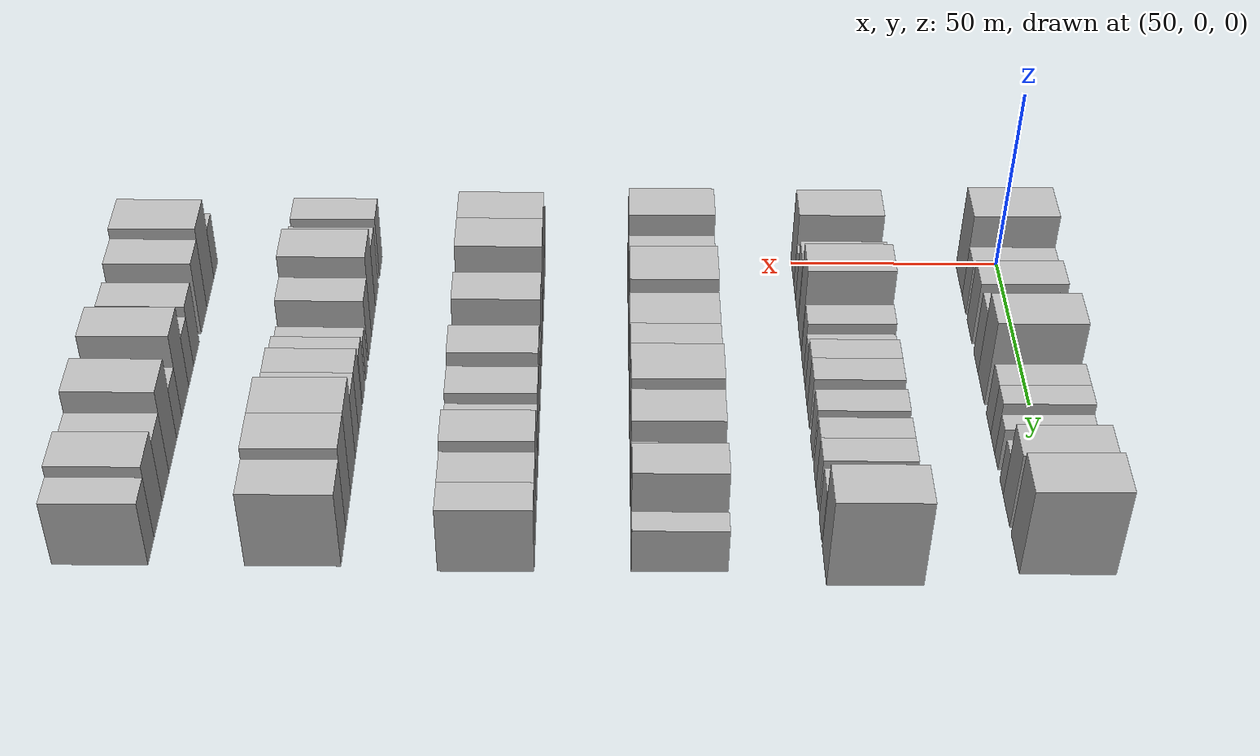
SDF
<sdf version="1.6">
 <world name="default">
  <model name="building_62">
   <static>1</static>
   <pose>50.0000 6.1663 0 0.000000 0.000000 0.000000</pose>
   <link name="link">
    <pose>0 0 12.00 0 0 0</pose>
    <collision name="collision"><geometry><box><size>20.0000 11.3809 24.0000</size></box></geometry></collision>
    <visual name="visual">
     <cast_shadows>0</cast_shadows>
     <geometry><box><size>20.0000 11.3809 24.0000</size></box></geometry>
     <material>
      <script>
       <uri>model://HANNAS_wall/materials/scripts</uri>
       <uri>model://HANNAS_wall/materials/textures</uri>
       <name>vrc/HANNAS_wall</name>
      </script>
     </material>
    </visual>
   </link>
  </model>
  <model name="building_63">
   <static>1</static>
   <pose>50.0000 15.2102 0 0.000000 0.000000 0.000000</pose>
   <link name="link">
    <pose>0 0 7.50 0 0 0</pose>
    <collision name="collision"><geometry><box><size>20.0000 6.7068 15.0000</size></box></geometry></collision>
    <visual name="visual">
     <cast_shadows>0</cast_shadows>
     <geometry><box><size>20.0000 6.7068 15.0000</size></box></geometry>
     <material>
      <script>
       <uri>model://HANNAS_wall/materials/scripts</uri>
       <uri>model://HANNAS_wall/materials/textures</uri>
       <name>vrc/HANNAS_wall</name>
      </script>
     </material>
    </visual>
   </link>
  </model>
  <model name="building_64">
   <static>1</static>
   <pose>50.0000 24.7810 0 0.000000 0.000000 0.000000</pose>
   <link name="link">
    <pose>0 0 9.00 0 0 0</pose>
    <collision name="collision"><geometry><box><size>20.0000 8.4347 18.0000</size></box></geometry></collision>
    <visual name="visual">
     <cast_shadows>0</cast_shadows>
     <geometry><box><size>20.0000 8.4347 18.0000</size></box></geometry>
     <material>
      <script>
       <uri>model://HANNAS_wall/materials/scripts</uri>
       <uri>model://HANNAS_wall/materials/textures</uri>
       <name>vrc/HANNAS_wall</name>
      </script>
     </material>
    </visual>
   </link>
  </model>
  <model name="building_65">
   <static>1</static>
   <pose>50.0000 35.6688 0 0.000000 0.000000 0.000000</pose>
   <link name="link">
    <pose>0 0 9.00 0 0 0</pose>
    <collision name="collision"><geometry><box><size>20.0000 7.3410 18.0000</size></box></geometry></collision>
    <visual name="visual">
     <cast_shadows>0</cast_shadows>
     <geometry><box><size>20.0000 7.3410 18.0000</size></box></geometry>
     <material>
      <script>
       <uri>model://HANNAS_wall/materials/scripts</uri>
       <uri>model://HANNAS_wall/materials/textures</uri>
       <name>vrc/HANNAS_wall</name>
      </script>
     </material>
    </visual>
   </link>
  </model>
  <model name="building_66">
   <static>1</static>
   <pose>50.0000 44.5364 0 0.000000 0.000000 0.000000</pose>
   <link name="link">
    <pose>0 0 12.00 0 0 0</pose>
    <collision name="collision"><geometry><box><size>20.0000 10.3943 24.0000</size></box></geometry></collision>
    <visual name="visual">
     <cast_shadows>0</cast_shadows>
     <geometry><box><size>20.0000 10.3943 24.0000</size></box></geometry>
     <material>
      <script>
       <uri>model://HANNAS_wall/materials/scripts</uri>
       <uri>model://HANNAS_wall/materials/textures</uri>
       <name>vrc/HANNAS_wall</name>
      </script>
     </material>
    </visual>
   </link>
  </model>
  <model name="building_67">
   <static>1</static>
   <pose>50.0000 56.1799 0 0.000000 0.000000 0.000000</pose>
   <link name="link">
    <pose>0 0 7.50 0 0 0</pose>
    <collision name="collision"><geometry><box><size>20.0000 6.8926 15.0000</size></box></geometry></collision>
    <visual name="visual">
     <cast_shadows>0</cast_shadows>
     <geometry><box><size>20.0000 6.8926 15.0000</size></box></geometry>
     <material>
      <script>
       <uri>model://HANNAS_wall/materials/scripts</uri>
       <uri>model://HANNAS_wall/materials/textures</uri>
       <name>vrc/HANNAS_wall</name>
      </script>
     </material>
    </visual>
   </link>
  </model>
  <model name="building_68">
   <static>1</static>
   <pose>50.0000 62.6498 0 0.000000 0.000000 0.000000</pose>
   <link name="link">
    <pose>0 0 7.50 0 0 0</pose>
    <collision name="collision"><geometry><box><size>20.0000 6.0474 15.0000</size></box></geometry></collision>
    <visual name="visual">
     <cast_shadows>0</cast_shadows>
     <geometry><box><size>20.0000 6.0474 15.0000</size></box></geometry>
     <material>
      <script>
       <uri>model://HANNAS_wall/materials/scripts</uri>
       <uri>model://HANNAS_wall/materials/textures</uri>
       <name>vrc/HANNAS_wall</name>
      </script>
     </material>
    </visual>
   </link>
  </model>
  <model name="building_69">
   <static>1</static>
   <pose>50.0000 68.0770 0 0.000000 0.000000 0.000000</pose>
   <link name="link">
    <pose>0 0 6.00 0 0 0</pose>
    <collision name="collision"><geometry><box><size>20.0000 4.8069 12.0000</size></box></geometry></collision>
    <visual name="visual">
     <cast_shadows>0</cast_shadows>
     <geometry><box><size>20.0000 4.8069 12.0000</size></box></geometry>
     <material>
      <script>
       <uri>model://HANNAS_wall/materials/scripts</uri>
       <uri>model://HANNAS_wall/materials/textures</uri>
       <name>vrc/HANNAS_wall</name>
      </script>
     </material>
    </visual>
   </link>
  </model>
  <model name="building_70">
   <static>1</static>
   <pose>50.0000 75.8929 0 0.000000 0.000000 0.000000</pose>
   <link name="link">
    <pose>0 0 6.00 0 0 0</pose>
    <collision name="collision"><geometry><box><size>20.0000 4.8249 12.0000</size></box></geometry></collision>
    <visual name="visual">
     <cast_shadows>0</cast_shadows>
     <geometry><box><size>20.0000 4.8249 12.0000</size></box></geometry>
     <material>
      <script>
       <uri>model://HANNAS_wall/materials/scripts</uri>
       <uri>model://HANNAS_wall/materials/textures</uri>
       <name>vrc/HANNAS_wall</name>
      </script>
     </material>
    </visual>
   </link>
  </model>
  <model name="building_71">
   <static>1</static>
   <pose>50.0000 82.9757 0 0.000000 0.000000 0.000000</pose>
   <link name="link">
    <pose>0 0 10.50 0 0 0</pose>
    <collision name="collision"><geometry><box><size>20.0000 9.3408 21.0000</size></box></geometry></collision>
    <visual name="visual">
     <cast_shadows>0</cast_shadows>
     <geometry><box><size>20.0000 9.3408 21.0000</size></box></geometry>
     <material>
      <script>
       <uri>model://HANNAS_wall/materials/scripts</uri>
       <uri>model://HANNAS_wall/materials/textures</uri>
       <name>vrc/HANNAS_wall</name>
      </script>
     </material>
    </visual>
   </link>
  </model>
  <model name="building_72">
   <static>1</static>
   <pose>50.0000 95.2500 0 0.000000 0.000000 0.000000</pose>
   <link name="link">
    <pose>0 0 12.00 0 0 0</pose>
    <collision name="collision"><geometry><box><size>20.0000 11.2077 24.0000</size></box></geometry></collision>
    <visual name="visual">
     <cast_shadows>0</cast_shadows>
     <geometry><box><size>20.0000 11.2077 24.0000</size></box></geometry>
     <material>
      <script>
       <uri>model://HANNAS_wall/materials/scripts</uri>
       <uri>model://HANNAS_wall/materials/textures</uri>
       <name>vrc/HANNAS_wall</name>
      </script>
     </material>
    </visual>
   </link>
  </model>
  <model name="building_196">
   <static>1</static>
   <pose>90.0000 2.8158 0 0.000000 0.000000 0.000000</pose>
   <link name="link">
    <pose>0 0 10.50 0 0 0</pose>
    <collision name="collision"><geometry><box><size>20.0000 10.0142 21.0000</size></box></geometry></collision>
    <visual name="visual">
     <cast_shadows>0</cast_shadows>
     <geometry><box><size>20.0000 10.0142 21.0000</size></box></geometry>
     <material>
      <script>
       <uri>model://HANNAS_wall/materials/scripts</uri>
       <uri>model://HANNAS_wall/materials/textures</uri>
       <name>vrc/HANNAS_wall</name>
      </script>
     </material>
    </visual>
   </link>
  </model>
  <model name="building_197">
   <static>1</static>
   <pose>90.0000 10.8008 0 0.000000 0.000000 0.000000</pose>
   <link name="link">
    <pose>0 0 6.00 0 0 0</pose>
    <collision name="collision"><geometry><box><size>20.0000 5.9558 12.0000</size></box></geometry></collision>
    <visual name="visual">
     <cast_shadows>0</cast_shadows>
     <geometry><box><size>20.0000 5.9558 12.0000</size></box></geometry>
     <material>
      <script>
       <uri>model://HANNAS_wall/materials/scripts</uri>
       <uri>model://HANNAS_wall/materials/textures</uri>
       <name>vrc/HANNAS_wall</name>
      </script>
     </material>
    </visual>
   </link>
  </model>
  <model name="building_198">
   <static>1</static>
   <pose>90.0000 17.4751 0 0.000000 0.000000 0.000000</pose>
   <link name="link">
    <pose>0 0 9.00 0 0 0</pose>
    <collision name="collision"><geometry><box><size>20.0000 7.3929 18.0000</size></box></geometry></collision>
    <visual name="visual">
     <cast_shadows>0</cast_shadows>
     <geometry><box><size>20.0000 7.3929 18.0000</size></box></geometry>
     <material>
      <script>
       <uri>model://HANNAS_wall/materials/scripts</uri>
       <uri>model://HANNAS_wall/materials/textures</uri>
       <name>vrc/HANNAS_wall</name>
      </script>
     </material>
    </visual>
   </link>
  </model>
  <model name="building_199">
   <static>1</static>
   <pose>90.0000 27.0912 0 0.000000 0.000000 0.000000</pose>
   <link name="link">
    <pose>0 0 12.00 0 0 0</pose>
    <collision name="collision"><geometry><box><size>20.0000 9.8393 24.0000</size></box></geometry></collision>
    <visual name="visual">
     <cast_shadows>0</cast_shadows>
     <geometry><box><size>20.0000 9.8393 24.0000</size></box></geometry>
     <material>
      <script>
       <uri>model://HANNAS_wall/materials/scripts</uri>
       <uri>model://HANNAS_wall/materials/textures</uri>
       <name>vrc/HANNAS_wall</name>
      </script>
     </material>
    </visual>
   </link>
  </model>
  <model name="building_200">
   <static>1</static>
   <pose>90.0000 36.3533 0 0.000000 0.000000 0.000000</pose>
   <link name="link">
    <pose>0 0 7.50 0 0 0</pose>
    <collision name="collision"><geometry><box><size>20.0000 6.6849 15.0000</size></box></geometry></collision>
    <visual name="visual">
     <cast_shadows>0</cast_shadows>
     <geometry><box><size>20.0000 6.6849 15.0000</size></box></geometry>
     <material>
      <script>
       <uri>model://HANNAS_wall/materials/scripts</uri>
       <uri>model://HANNAS_wall/materials/textures</uri>
       <name>vrc/HANNAS_wall</name>
      </script>
     </material>
    </visual>
   </link>
  </model>
  <model name="building_201">
   <static>1</static>
   <pose>90.0000 42.2931 0 0.000000 0.000000 0.000000</pose>
   <link name="link">
    <pose>0 0 6.00 0 0 0</pose>
    <collision name="collision"><geometry><box><size>20.0000 5.1948 12.0000</size></box></geometry></collision>
    <visual name="visual">
     <cast_shadows>0</cast_shadows>
     <geometry><box><size>20.0000 5.1948 12.0000</size></box></geometry>
     <material>
      <script>
       <uri>model://HANNAS_wall/materials/scripts</uri>
       <uri>model://HANNAS_wall/materials/textures</uri>
       <name>vrc/HANNAS_wall</name>
      </script>
     </material>
    </visual>
   </link>
  </model>
  <model name="building_202">
   <static>1</static>
   <pose>90.0000 48.0219 0 0.000000 0.000000 0.000000</pose>
   <link name="link">
    <pose>0 0 7.50 0 0 0</pose>
    <collision name="collision"><geometry><box><size>20.0000 6.2629 15.0000</size></box></geometry></collision>
    <visual name="visual">
     <cast_shadows>0</cast_shadows>
     <geometry><box><size>20.0000 6.2629 15.0000</size></box></geometry>
     <material>
      <script>
       <uri>model://HANNAS_wall/materials/scripts</uri>
       <uri>model://HANNAS_wall/materials/textures</uri>
       <name>vrc/HANNAS_wall</name>
      </script>
     </material>
    </visual>
   </link>
  </model>
  <model name="building_203">
   <static>1</static>
   <pose>90.0000 54.7019 0 0.000000 0.000000 0.000000</pose>
   <link name="link">
    <pose>0 0 7.50 0 0 0</pose>
    <collision name="collision"><geometry><box><size>20.0000 7.0969 15.0000</size></box></geometry></collision>
    <visual name="visual">
     <cast_shadows>0</cast_shadows>
     <geometry><box><size>20.0000 7.0969 15.0000</size></box></geometry>
     <material>
      <script>
       <uri>model://HANNAS_wall/materials/scripts</uri>
       <uri>model://HANNAS_wall/materials/textures</uri>
       <name>vrc/HANNAS_wall</name>
      </script>
     </material>
    </visual>
   </link>
  </model>
  <model name="building_204">
   <static>1</static>
   <pose>90.0000 64.6598 0 0.000000 0.000000 0.000000</pose>
   <link name="link">
    <pose>0 0 7.50 0 0 0</pose>
    <collision name="collision"><geometry><box><size>20.0000 6.8189 15.0000</size></box></geometry></collision>
    <visual name="visual">
     <cast_shadows>0</cast_shadows>
     <geometry><box><size>20.0000 6.8189 15.0000</size></box></geometry>
     <material>
      <script>
       <uri>model://HANNAS_wall/materials/scripts</uri>
       <uri>model://HANNAS_wall/materials/textures</uri>
       <name>vrc/HANNAS_wall</name>
      </script>
     </material>
    </visual>
   </link>
  </model>
  <model name="building_205">
   <static>1</static>
   <pose>90.0000 73.2095 0 0.000000 0.000000 0.000000</pose>
   <link name="link">
    <pose>0 0 7.50 0 0 0</pose>
    <collision name="collision"><geometry><box><size>20.0000 6.2806 15.0000</size></box></geometry></collision>
    <visual name="visual">
     <cast_shadows>0</cast_shadows>
     <geometry><box><size>20.0000 6.2806 15.0000</size></box></geometry>
     <material>
      <script>
       <uri>model://HANNAS_wall/materials/scripts</uri>
       <uri>model://HANNAS_wall/materials/textures</uri>
       <name>vrc/HANNAS_wall</name>
      </script>
     </material>
    </visual>
   </link>
  </model>
  <model name="building_206">
   <static>1</static>
   <pose>90.0000 79.8359 0 0.000000 0.000000 0.000000</pose>
   <link name="link">
    <pose>0 0 7.50 0 0 0</pose>
    <collision name="collision"><geometry><box><size>20.0000 6.9722 15.0000</size></box></geometry></collision>
    <visual name="visual">
     <cast_shadows>0</cast_shadows>
     <geometry><box><size>20.0000 6.9722 15.0000</size></box></geometry>
     <material>
      <script>
       <uri>model://HANNAS_wall/materials/scripts</uri>
       <uri>model://HANNAS_wall/materials/textures</uri>
       <name>vrc/HANNAS_wall</name>
      </script>
     </material>
    </visual>
   </link>
  </model>
  <model name="building_207">
   <static>1</static>
   <pose>90.0000 88.8067 0 0.000000 0.000000 0.000000</pose>
   <link name="link">
    <pose>0 0 7.50 0 0 0</pose>
    <collision name="collision"><geometry><box><size>20.0000 6.9694 15.0000</size></box></geometry></collision>
    <visual name="visual">
     <cast_shadows>0</cast_shadows>
     <geometry><box><size>20.0000 6.9694 15.0000</size></box></geometry>
     <material>
      <script>
       <uri>model://HANNAS_wall/materials/scripts</uri>
       <uri>model://HANNAS_wall/materials/textures</uri>
       <name>vrc/HANNAS_wall</name>
      </script>
     </material>
    </visual>
   </link>
  </model>
  <model name="building_208">
   <static>1</static>
   <pose>90.0000 98.7332 0 0.000000 0.000000 0.000000</pose>
   <link name="link">
    <pose>0 0 12.00 0 0 0</pose>
    <collision name="collision"><geometry><box><size>20.0000 10.8836 24.0000</size></box></geometry></collision>
    <visual name="visual">
     <cast_shadows>0</cast_shadows>
     <geometry><box><size>20.0000 10.8836 24.0000</size></box></geometry>
     <material>
      <script>
       <uri>model://HANNAS_wall/materials/scripts</uri>
       <uri>model://HANNAS_wall/materials/textures</uri>
       <name>vrc/HANNAS_wall</name>
      </script>
     </material>
    </visual>
   </link>
  </model>
  <model name="building_329">
   <static>1</static>
   <pose>130.0000 6.7602 0 0.000000 0.000000 0.000000</pose>
   <link name="link">
    <pose>0 0 12.00 0 0 0</pose>
    <collision name="collision"><geometry><box><size>20.0000 10.2969 24.0000</size></box></geometry></collision>
    <visual name="visual">
     <cast_shadows>0</cast_shadows>
     <geometry><box><size>20.0000 10.2969 24.0000</size></box></geometry>
     <material>
      <script>
       <uri>model://HANNAS_wall/materials/scripts</uri>
       <uri>model://HANNAS_wall/materials/textures</uri>
       <name>vrc/HANNAS_wall</name>
      </script>
     </material>
    </visual>
   </link>
  </model>
  <model name="building_330">
   <static>1</static>
   <pose>130.0000 16.1102 0 0.000000 0.000000 0.000000</pose>
   <link name="link">
    <pose>0 0 9.00 0 0 0</pose>
    <collision name="collision"><geometry><box><size>20.0000 8.4030 18.0000</size></box></geometry></collision>
    <visual name="visual">
     <cast_shadows>0</cast_shadows>
     <geometry><box><size>20.0000 8.4030 18.0000</size></box></geometry>
     <material>
      <script>
       <uri>model://HANNAS_wall/materials/scripts</uri>
       <uri>model://HANNAS_wall/materials/textures</uri>
       <name>vrc/HANNAS_wall</name>
      </script>
     </material>
    </visual>
   </link>
  </model>
  <model name="building_331">
   <static>1</static>
   <pose>130.0000 29.2352 0 0.000000 0.000000 0.000000</pose>
   <link name="link">
    <pose>0 0 12.00 0 0 0</pose>
    <collision name="collision"><geometry><box><size>20.0000 11.8470 24.0000</size></box></geometry></collision>
    <visual name="visual">
     <cast_shadows>0</cast_shadows>
     <geometry><box><size>20.0000 11.8470 24.0000</size></box></geometry>
     <material>
      <script>
       <uri>model://HANNAS_wall/materials/scripts</uri>
       <uri>model://HANNAS_wall/materials/textures</uri>
       <name>vrc/HANNAS_wall</name>
      </script>
     </material>
    </visual>
   </link>
  </model>
  <model name="building_332">
   <static>1</static>
   <pose>130.0000 41.4085 0 0.000000 0.000000 0.000000</pose>
   <link name="link">
    <pose>0 0 10.50 0 0 0</pose>
    <collision name="collision"><geometry><box><size>20.0000 10.4996 21.0000</size></box></geometry></collision>
    <visual name="visual">
     <cast_shadows>0</cast_shadows>
     <geometry><box><size>20.0000 10.4996 21.0000</size></box></geometry>
     <material>
      <script>
       <uri>model://HANNAS_wall/materials/scripts</uri>
       <uri>model://HANNAS_wall/materials/textures</uri>
       <name>vrc/HANNAS_wall</name>
      </script>
     </material>
    </visual>
   </link>
  </model>
  <model name="building_333">
   <static>1</static>
   <pose>130.0000 51.2149 0 0.000000 0.000000 0.000000</pose>
   <link name="link">
    <pose>0 0 10.50 0 0 0</pose>
    <collision name="collision"><geometry><box><size>20.0000 9.1131 21.0000</size></box></geometry></collision>
    <visual name="visual">
     <cast_shadows>0</cast_shadows>
     <geometry><box><size>20.0000 9.1131 21.0000</size></box></geometry>
     <material>
      <script>
       <uri>model://HANNAS_wall/materials/scripts</uri>
       <uri>model://HANNAS_wall/materials/textures</uri>
       <name>vrc/HANNAS_wall</name>
      </script>
     </material>
    </visual>
   </link>
  </model>
  <model name="building_334">
   <static>1</static>
   <pose>130.0000 62.3949 0 0.000000 0.000000 0.000000</pose>
   <link name="link">
    <pose>0 0 12.00 0 0 0</pose>
    <collision name="collision"><geometry><box><size>20.0000 11.2468 24.0000</size></box></geometry></collision>
    <visual name="visual">
     <cast_shadows>0</cast_shadows>
     <geometry><box><size>20.0000 11.2468 24.0000</size></box></geometry>
     <material>
      <script>
       <uri>model://HANNAS_wall/materials/scripts</uri>
       <uri>model://HANNAS_wall/materials/textures</uri>
       <name>vrc/HANNAS_wall</name>
      </script>
     </material>
    </visual>
   </link>
  </model>
  <model name="building_335">
   <static>1</static>
   <pose>130.0000 72.9431 0 0.000000 0.000000 0.000000</pose>
   <link name="link">
    <pose>0 0 10.50 0 0 0</pose>
    <collision name="collision"><geometry><box><size>20.0000 9.8496 21.0000</size></box></geometry></collision>
    <visual name="visual">
     <cast_shadows>0</cast_shadows>
     <geometry><box><size>20.0000 9.8496 21.0000</size></box></geometry>
     <material>
      <script>
       <uri>model://HANNAS_wall/materials/scripts</uri>
       <uri>model://HANNAS_wall/materials/textures</uri>
       <name>vrc/HANNAS_wall</name>
      </script>
     </material>
    </visual>
   </link>
  </model>
  <model name="building_336">
   <static>1</static>
   <pose>130.0000 81.1132 0 0.000000 0.000000 0.000000</pose>
   <link name="link">
    <pose>0 0 7.50 0 0 0</pose>
    <collision name="collision"><geometry><box><size>20.0000 6.4907 15.0000</size></box></geometry></collision>
    <visual name="visual">
     <cast_shadows>0</cast_shadows>
     <geometry><box><size>20.0000 6.4907 15.0000</size></box></geometry>
     <material>
      <script>
       <uri>model://HANNAS_wall/materials/scripts</uri>
       <uri>model://HANNAS_wall/materials/textures</uri>
       <name>vrc/HANNAS_wall</name>
      </script>
     </material>
    </visual>
   </link>
  </model>
  <model name="building_337">
   <static>1</static>
   <pose>130.0000 88.8090 0 0.000000 0.000000 0.000000</pose>
   <link name="link">
    <pose>0 0 10.50 0 0 0</pose>
    <collision name="collision"><geometry><box><size>20.0000 8.9009 21.0000</size></box></geometry></collision>
    <visual name="visual">
     <cast_shadows>0</cast_shadows>
     <geometry><box><size>20.0000 8.9009 21.0000</size></box></geometry>
     <material>
      <script>
       <uri>model://HANNAS_wall/materials/scripts</uri>
       <uri>model://HANNAS_wall/materials/textures</uri>
       <name>vrc/HANNAS_wall</name>
      </script>
     </material>
    </visual>
   </link>
  </model>
  <model name="building_338">
   <static>1</static>
   <pose>130.0000 97.9963 0 0.000000 0.000000 0.000000</pose>
   <link name="link">
    <pose>0 0 6.00 0 0 0</pose>
    <collision name="collision"><geometry><box><size>20.0000 5.4737 12.0000</size></box></geometry></collision>
    <visual name="visual">
     <cast_shadows>0</cast_shadows>
     <geometry><box><size>20.0000 5.4737 12.0000</size></box></geometry>
     <material>
      <script>
       <uri>model://HANNAS_wall/materials/scripts</uri>
       <uri>model://HANNAS_wall/materials/textures</uri>
       <name>vrc/HANNAS_wall</name>
      </script>
     </material>
    </visual>
   </link>
  </model>
  <model name="building_469">
   <static>1</static>
   <pose>170.0000 0.2132 0 0.000000 0.000000 0.000000</pose>
   <link name="link">
    <pose>0 0 7.50 0 0 0</pose>
    <collision name="collision"><geometry><box><size>20.0000 6.1653 15.0000</size></box></geometry></collision>
    <visual name="visual">
     <cast_shadows>0</cast_shadows>
     <geometry><box><size>20.0000 6.1653 15.0000</size></box></geometry>
     <material>
      <script>
       <uri>model://HANNAS_wall/materials/scripts</uri>
       <uri>model://HANNAS_wall/materials/textures</uri>
       <name>vrc/HANNAS_wall</name>
      </script>
     </material>
    </visual>
   </link>
  </model>
  <model name="building_470">
   <static>1</static>
   <pose>170.0000 8.2846 0 0.000000 0.000000 0.000000</pose>
   <link name="link">
    <pose>0 0 12.00 0 0 0</pose>
    <collision name="collision"><geometry><box><size>20.0000 9.9775 24.0000</size></box></geometry></collision>
    <visual name="visual">
     <cast_shadows>0</cast_shadows>
     <geometry><box><size>20.0000 9.9775 24.0000</size></box></geometry>
     <material>
      <script>
       <uri>model://HANNAS_wall/materials/scripts</uri>
       <uri>model://HANNAS_wall/materials/textures</uri>
       <name>vrc/HANNAS_wall</name>
      </script>
     </material>
    </visual>
   </link>
  </model>
  <model name="building_471">
   <static>1</static>
   <pose>170.0000 18.5358 0 0.000000 0.000000 0.000000</pose>
   <link name="link">
    <pose>0 0 12.00 0 0 0</pose>
    <collision name="collision"><geometry><box><size>20.0000 10.5247 24.0000</size></box></geometry></collision>
    <visual name="visual">
     <cast_shadows>0</cast_shadows>
     <geometry><box><size>20.0000 10.5247 24.0000</size></box></geometry>
     <material>
      <script>
       <uri>model://HANNAS_wall/materials/scripts</uri>
       <uri>model://HANNAS_wall/materials/textures</uri>
       <name>vrc/HANNAS_wall</name>
      </script>
     </material>
    </visual>
   </link>
  </model>
  <model name="building_472">
   <static>1</static>
   <pose>170.0000 26.5891 0 0.000000 0.000000 0.000000</pose>
   <link name="link">
    <pose>0 0 6.00 0 0 0</pose>
    <collision name="collision"><geometry><box><size>20.0000 5.5819 12.0000</size></box></geometry></collision>
    <visual name="visual">
     <cast_shadows>0</cast_shadows>
     <geometry><box><size>20.0000 5.5819 12.0000</size></box></geometry>
     <material>
      <script>
       <uri>model://HANNAS_wall/materials/scripts</uri>
       <uri>model://HANNAS_wall/materials/textures</uri>
       <name>vrc/HANNAS_wall</name>
      </script>
     </material>
    </visual>
   </link>
  </model>
  <model name="building_473">
   <static>1</static>
   <pose>170.0000 34.1348 0 0.000000 0.000000 0.000000</pose>
   <link name="link">
    <pose>0 0 10.50 0 0 0</pose>
    <collision name="collision"><geometry><box><size>20.0000 9.5096 21.0000</size></box></geometry></collision>
    <visual name="visual">
     <cast_shadows>0</cast_shadows>
     <geometry><box><size>20.0000 9.5096 21.0000</size></box></geometry>
     <material>
      <script>
       <uri>model://HANNAS_wall/materials/scripts</uri>
       <uri>model://HANNAS_wall/materials/textures</uri>
       <name>vrc/HANNAS_wall</name>
      </script>
     </material>
    </visual>
   </link>
  </model>
  <model name="building_474">
   <static>1</static>
   <pose>170.0000 44.7377 0 0.000000 0.000000 0.000000</pose>
   <link name="link">
    <pose>0 0 6.00 0 0 0</pose>
    <collision name="collision"><geometry><box><size>20.0000 5.6963 12.0000</size></box></geometry></collision>
    <visual name="visual">
     <cast_shadows>0</cast_shadows>
     <geometry><box><size>20.0000 5.6963 12.0000</size></box></geometry>
     <material>
      <script>
       <uri>model://HANNAS_wall/materials/scripts</uri>
       <uri>model://HANNAS_wall/materials/textures</uri>
       <name>vrc/HANNAS_wall</name>
      </script>
     </material>
    </visual>
   </link>
  </model>
  <model name="building_475">
   <static>1</static>
   <pose>170.0000 52.2009 0 0.000000 0.000000 0.000000</pose>
   <link name="link">
    <pose>0 0 10.50 0 0 0</pose>
    <collision name="collision"><geometry><box><size>20.0000 9.2301 21.0000</size></box></geometry></collision>
    <visual name="visual">
     <cast_shadows>0</cast_shadows>
     <geometry><box><size>20.0000 9.2301 21.0000</size></box></geometry>
     <material>
      <script>
       <uri>model://HANNAS_wall/materials/scripts</uri>
       <uri>model://HANNAS_wall/materials/textures</uri>
       <name>vrc/HANNAS_wall</name>
      </script>
     </material>
    </visual>
   </link>
  </model>
  <model name="building_476">
   <static>1</static>
   <pose>170.0000 62.1468 0 0.000000 0.000000 0.000000</pose>
   <link name="link">
    <pose>0 0 9.00 0 0 0</pose>
    <collision name="collision"><geometry><box><size>20.0000 8.6616 18.0000</size></box></geometry></collision>
    <visual name="visual">
     <cast_shadows>0</cast_shadows>
     <geometry><box><size>20.0000 8.6616 18.0000</size></box></geometry>
     <material>
      <script>
       <uri>model://HANNAS_wall/materials/scripts</uri>
       <uri>model://HANNAS_wall/materials/textures</uri>
       <name>vrc/HANNAS_wall</name>
      </script>
     </material>
    </visual>
   </link>
  </model>
  <model name="building_477">
   <static>1</static>
   <pose>170.0000 70.1141 0 0.000000 0.000000 0.000000</pose>
   <link name="link">
    <pose>0 0 7.50 0 0 0</pose>
    <collision name="collision"><geometry><box><size>20.0000 7.2729 15.0000</size></box></geometry></collision>
    <visual name="visual">
     <cast_shadows>0</cast_shadows>
     <geometry><box><size>20.0000 7.2729 15.0000</size></box></geometry>
     <material>
      <script>
       <uri>model://HANNAS_wall/materials/scripts</uri>
       <uri>model://HANNAS_wall/materials/textures</uri>
       <name>vrc/HANNAS_wall</name>
      </script>
     </material>
    </visual>
   </link>
  </model>
  <model name="building_478">
   <static>1</static>
   <pose>170.0000 79.4885 0 0.000000 0.000000 0.000000</pose>
   <link name="link">
    <pose>0 0 10.50 0 0 0</pose>
    <collision name="collision"><geometry><box><size>20.0000 9.4758 21.0000</size></box></geometry></collision>
    <visual name="visual">
     <cast_shadows>0</cast_shadows>
     <geometry><box><size>20.0000 9.4758 21.0000</size></box></geometry>
     <material>
      <script>
       <uri>model://HANNAS_wall/materials/scripts</uri>
       <uri>model://HANNAS_wall/materials/textures</uri>
       <name>vrc/HANNAS_wall</name>
      </script>
     </material>
    </visual>
   </link>
  </model>
  <model name="building_479">
   <static>1</static>
   <pose>170.0000 88.6332 0 0.000000 0.000000 0.000000</pose>
   <link name="link">
    <pose>0 0 9.00 0 0 0</pose>
    <collision name="collision"><geometry><box><size>20.0000 8.8137 18.0000</size></box></geometry></collision>
    <visual name="visual">
     <cast_shadows>0</cast_shadows>
     <geometry><box><size>20.0000 8.8137 18.0000</size></box></geometry>
     <material>
      <script>
       <uri>model://HANNAS_wall/materials/scripts</uri>
       <uri>model://HANNAS_wall/materials/textures</uri>
       <name>vrc/HANNAS_wall</name>
      </script>
     </material>
    </visual>
   </link>
  </model>
  <model name="building_480">
   <static>1</static>
   <pose>170.0000 97.0409 0 0.000000 0.000000 0.000000</pose>
   <link name="link">
    <pose>0 0 9.00 0 0 0</pose>
    <collision name="collision"><geometry><box><size>20.0000 8.0017 18.0000</size></box></geometry></collision>
    <visual name="visual">
     <cast_shadows>0</cast_shadows>
     <geometry><box><size>20.0000 8.0017 18.0000</size></box></geometry>
     <material>
      <script>
       <uri>model://HANNAS_wall/materials/scripts</uri>
       <uri>model://HANNAS_wall/materials/textures</uri>
       <name>vrc/HANNAS_wall</name>
      </script>
     </material>
    </visual>
   </link>
  </model>
  <model name="building_609">
   <static>1</static>
   <pose>210.0000 2.3068 0 0.000000 0.000000 0.000000</pose>
   <link name="link">
    <pose>0 0 9.00 0 0 0</pose>
    <collision name="collision"><geometry><box><size>20.0000 8.1308 18.0000</size></box></geometry></collision>
    <visual name="visual">
     <cast_shadows>0</cast_shadows>
     <geometry><box><size>20.0000 8.1308 18.0000</size></box></geometry>
     <material>
      <script>
       <uri>model://HANNAS_wall/materials/scripts</uri>
       <uri>model://HANNAS_wall/materials/textures</uri>
       <name>vrc/HANNAS_wall</name>
      </script>
     </material>
    </visual>
   </link>
  </model>
  <model name="building_610">
   <static>1</static>
   <pose>210.0000 13.5342 0 0.000000 0.000000 0.000000</pose>
   <link name="link">
    <pose>0 0 9.00 0 0 0</pose>
    <collision name="collision"><geometry><box><size>20.0000 8.3239 18.0000</size></box></geometry></collision>
    <visual name="visual">
     <cast_shadows>0</cast_shadows>
     <geometry><box><size>20.0000 8.3239 18.0000</size></box></geometry>
     <material>
      <script>
       <uri>model://HANNAS_wall/materials/scripts</uri>
       <uri>model://HANNAS_wall/materials/textures</uri>
       <name>vrc/HANNAS_wall</name>
      </script>
     </material>
    </visual>
   </link>
  </model>
  <model name="building_611">
   <static>1</static>
   <pose>210.0000 22.8304 0 0.000000 0.000000 0.000000</pose>
   <link name="link">
    <pose>0 0 12.00 0 0 0</pose>
    <collision name="collision"><geometry><box><size>20.0000 10.2686 24.0000</size></box></geometry></collision>
    <visual name="visual">
     <cast_shadows>0</cast_shadows>
     <geometry><box><size>20.0000 10.2686 24.0000</size></box></geometry>
     <material>
      <script>
       <uri>model://HANNAS_wall/materials/scripts</uri>
       <uri>model://HANNAS_wall/materials/textures</uri>
       <name>vrc/HANNAS_wall</name>
      </script>
     </material>
    </visual>
   </link>
  </model>
  <model name="building_612">
   <static>1</static>
   <pose>210.0000 32.1109 0 0.000000 0.000000 0.000000</pose>
   <link name="link">
    <pose>0 0 9.00 0 0 0</pose>
    <collision name="collision"><geometry><box><size>20.0000 8.2925 18.0000</size></box></geometry></collision>
    <visual name="visual">
     <cast_shadows>0</cast_shadows>
     <geometry><box><size>20.0000 8.2925 18.0000</size></box></geometry>
     <material>
      <script>
       <uri>model://HANNAS_wall/materials/scripts</uri>
       <uri>model://HANNAS_wall/materials/textures</uri>
       <name>vrc/HANNAS_wall</name>
      </script>
     </material>
    </visual>
   </link>
  </model>
  <model name="building_613">
   <static>1</static>
   <pose>210.0000 40.6596 0 0.000000 0.000000 0.000000</pose>
   <link name="link">
    <pose>0 0 6.00 0 0 0</pose>
    <collision name="collision"><geometry><box><size>20.0000 4.8049 12.0000</size></box></geometry></collision>
    <visual name="visual">
     <cast_shadows>0</cast_shadows>
     <geometry><box><size>20.0000 4.8049 12.0000</size></box></geometry>
     <material>
      <script>
       <uri>model://HANNAS_wall/materials/scripts</uri>
       <uri>model://HANNAS_wall/materials/textures</uri>
       <name>vrc/HANNAS_wall</name>
      </script>
     </material>
    </visual>
   </link>
  </model>
  <model name="building_614">
   <static>1</static>
   <pose>210.0000 48.1698 0 0.000000 0.000000 0.000000</pose>
   <link name="link">
    <pose>0 0 7.50 0 0 0</pose>
    <collision name="collision"><geometry><box><size>20.0000 6.2153 15.0000</size></box></geometry></collision>
    <visual name="visual">
     <cast_shadows>0</cast_shadows>
     <geometry><box><size>20.0000 6.2153 15.0000</size></box></geometry>
     <material>
      <script>
       <uri>model://HANNAS_wall/materials/scripts</uri>
       <uri>model://HANNAS_wall/materials/textures</uri>
       <name>vrc/HANNAS_wall</name>
      </script>
     </material>
    </visual>
   </link>
  </model>
  <model name="building_615">
   <static>1</static>
   <pose>210.0000 56.2129 0 0.000000 0.000000 0.000000</pose>
   <link name="link">
    <pose>0 0 9.00 0 0 0</pose>
    <collision name="collision"><geometry><box><size>20.0000 7.8708 18.0000</size></box></geometry></collision>
    <visual name="visual">
     <cast_shadows>0</cast_shadows>
     <geometry><box><size>20.0000 7.8708 18.0000</size></box></geometry>
     <material>
      <script>
       <uri>model://HANNAS_wall/materials/scripts</uri>
       <uri>model://HANNAS_wall/materials/textures</uri>
       <name>vrc/HANNAS_wall</name>
      </script>
     </material>
    </visual>
   </link>
  </model>
  <model name="building_616">
   <static>1</static>
   <pose>210.0000 64.1777 0 0.000000 0.000000 0.000000</pose>
   <link name="link">
    <pose>0 0 9.00 0 0 0</pose>
    <collision name="collision"><geometry><box><size>20.0000 8.0588 18.0000</size></box></geometry></collision>
    <visual name="visual">
     <cast_shadows>0</cast_shadows>
     <geometry><box><size>20.0000 8.0588 18.0000</size></box></geometry>
     <material>
      <script>
       <uri>model://HANNAS_wall/materials/scripts</uri>
       <uri>model://HANNAS_wall/materials/textures</uri>
       <name>vrc/HANNAS_wall</name>
      </script>
     </material>
    </visual>
   </link>
  </model>
  <model name="building_617">
   <static>1</static>
   <pose>210.0000 73.6963 0 0.000000 0.000000 0.000000</pose>
   <link name="link">
    <pose>0 0 12.00 0 0 0</pose>
    <collision name="collision"><geometry><box><size>20.0000 10.9785 24.0000</size></box></geometry></collision>
    <visual name="visual">
     <cast_shadows>0</cast_shadows>
     <geometry><box><size>20.0000 10.9785 24.0000</size></box></geometry>
     <material>
      <script>
       <uri>model://HANNAS_wall/materials/scripts</uri>
       <uri>model://HANNAS_wall/materials/textures</uri>
       <name>vrc/HANNAS_wall</name>
      </script>
     </material>
    </visual>
   </link>
  </model>
  <model name="building_618">
   <static>1</static>
   <pose>210.0000 84.4800 0 0.000000 0.000000 0.000000</pose>
   <link name="link">
    <pose>0 0 12.00 0 0 0</pose>
    <collision name="collision"><geometry><box><size>20.0000 10.5888 24.0000</size></box></geometry></collision>
    <visual name="visual">
     <cast_shadows>0</cast_shadows>
     <geometry><box><size>20.0000 10.5888 24.0000</size></box></geometry>
     <material>
      <script>
       <uri>model://HANNAS_wall/materials/scripts</uri>
       <uri>model://HANNAS_wall/materials/textures</uri>
       <name>vrc/HANNAS_wall</name>
      </script>
     </material>
    </visual>
   </link>
  </model>
  <model name="building_619">
   <static>1</static>
   <pose>210.0000 94.8218 0 0.000000 0.000000 0.000000</pose>
   <link name="link">
    <pose>0 0 10.50 0 0 0</pose>
    <collision name="collision"><geometry><box><size>20.0000 10.0949 21.0000</size></box></geometry></collision>
    <visual name="visual">
     <cast_shadows>0</cast_shadows>
     <geometry><box><size>20.0000 10.0949 21.0000</size></box></geometry>
     <material>
      <script>
       <uri>model://HANNAS_wall/materials/scripts</uri>
       <uri>model://HANNAS_wall/materials/textures</uri>
       <name>vrc/HANNAS_wall</name>
      </script>
     </material>
    </visual>
   </link>
  </model>
  <model name="building_748">
   <static>1</static>
   <pose>250.0000 3.7450 0 0.000000 0.000000 0.000000</pose>
   <link name="link">
    <pose>0 0 7.50 0 0 0</pose>
    <collision name="collision"><geometry><box><size>20.0000 6.2001 15.0000</size></box></geometry></collision>
    <visual name="visual">
     <cast_shadows>0</cast_shadows>
     <geometry><box><size>20.0000 6.2001 15.0000</size></box></geometry>
     <material>
      <script>
       <uri>model://HANNAS_wall/materials/scripts</uri>
       <uri>model://HANNAS_wall/materials/textures</uri>
       <name>vrc/HANNAS_wall</name>
      </script>
     </material>
    </visual>
   </link>
  </model>
  <model name="building_749">
   <static>1</static>
   <pose>250.0000 12.4376 0 0.000000 0.000000 0.000000</pose>
   <link name="link">
    <pose>0 0 12.00 0 0 0</pose>
    <collision name="collision"><geometry><box><size>20.0000 11.1851 24.0000</size></box></geometry></collision>
    <visual name="visual">
     <cast_shadows>0</cast_shadows>
     <geometry><box><size>20.0000 11.1851 24.0000</size></box></geometry>
     <material>
      <script>
       <uri>model://HANNAS_wall/materials/scripts</uri>
       <uri>model://HANNAS_wall/materials/textures</uri>
       <name>vrc/HANNAS_wall</name>
      </script>
     </material>
    </visual>
   </link>
  </model>
  <model name="building_750">
   <static>1</static>
   <pose>250.0000 22.5519 0 0.000000 0.000000 0.000000</pose>
   <link name="link">
    <pose>0 0 10.50 0 0 0</pose>
    <collision name="collision"><geometry><box><size>20.0000 9.0434 21.0000</size></box></geometry></collision>
    <visual name="visual">
     <cast_shadows>0</cast_shadows>
     <geometry><box><size>20.0000 9.0434 21.0000</size></box></geometry>
     <material>
      <script>
       <uri>model://HANNAS_wall/materials/scripts</uri>
       <uri>model://HANNAS_wall/materials/textures</uri>
       <name>vrc/HANNAS_wall</name>
      </script>
     </material>
    </visual>
   </link>
  </model>
  <model name="building_751">
   <static>1</static>
   <pose>250.0000 34.3048 0 0.000000 0.000000 0.000000</pose>
   <link name="link">
    <pose>0 0 9.00 0 0 0</pose>
    <collision name="collision"><geometry><box><size>20.0000 8.4625 18.0000</size></box></geometry></collision>
    <visual name="visual">
     <cast_shadows>0</cast_shadows>
     <geometry><box><size>20.0000 8.4625 18.0000</size></box></geometry>
     <material>
      <script>
       <uri>model://HANNAS_wall/materials/scripts</uri>
       <uri>model://HANNAS_wall/materials/textures</uri>
       <name>vrc/HANNAS_wall</name>
      </script>
     </material>
    </visual>
   </link>
  </model>
  <model name="building_752">
   <static>1</static>
   <pose>250.0000 42.1218 0 0.000000 0.000000 0.000000</pose>
   <link name="link">
    <pose>0 0 7.50 0 0 0</pose>
    <collision name="collision"><geometry><box><size>20.0000 7.1716 15.0000</size></box></geometry></collision>
    <visual name="visual">
     <cast_shadows>0</cast_shadows>
     <geometry><box><size>20.0000 7.1716 15.0000</size></box></geometry>
     <material>
      <script>
       <uri>model://HANNAS_wall/materials/scripts</uri>
       <uri>model://HANNAS_wall/materials/textures</uri>
       <name>vrc/HANNAS_wall</name>
      </script>
     </material>
    </visual>
   </link>
  </model>
  <model name="building_753">
   <static>1</static>
   <pose>250.0000 50.6149 0 0.000000 0.000000 0.000000</pose>
   <link name="link">
    <pose>0 0 12.00 0 0 0</pose>
    <collision name="collision"><geometry><box><size>20.0000 9.8145 24.0000</size></box></geometry></collision>
    <visual name="visual">
     <cast_shadows>0</cast_shadows>
     <geometry><box><size>20.0000 9.8145 24.0000</size></box></geometry>
     <material>
      <script>
       <uri>model://HANNAS_wall/materials/scripts</uri>
       <uri>model://HANNAS_wall/materials/textures</uri>
       <name>vrc/HANNAS_wall</name>
      </script>
     </material>
    </visual>
   </link>
  </model>
  <model name="building_754">
   <static>1</static>
   <pose>250.0000 59.1243 0 0.000000 0.000000 0.000000</pose>
   <link name="link">
    <pose>0 0 7.50 0 0 0</pose>
    <collision name="collision"><geometry><box><size>20.0000 7.2043 15.0000</size></box></geometry></collision>
    <visual name="visual">
     <cast_shadows>0</cast_shadows>
     <geometry><box><size>20.0000 7.2043 15.0000</size></box></geometry>
     <material>
      <script>
       <uri>model://HANNAS_wall/materials/scripts</uri>
       <uri>model://HANNAS_wall/materials/textures</uri>
       <name>vrc/HANNAS_wall</name>
      </script>
     </material>
    </visual>
   </link>
  </model>
  <model name="building_755">
   <static>1</static>
   <pose>250.0000 67.9683 0 0.000000 0.000000 0.000000</pose>
   <link name="link">
    <pose>0 0 12.00 0 0 0</pose>
    <collision name="collision"><geometry><box><size>20.0000 10.4836 24.0000</size></box></geometry></collision>
    <visual name="visual">
     <cast_shadows>0</cast_shadows>
     <geometry><box><size>20.0000 10.4836 24.0000</size></box></geometry>
     <material>
      <script>
       <uri>model://HANNAS_wall/materials/scripts</uri>
       <uri>model://HANNAS_wall/materials/textures</uri>
       <name>vrc/HANNAS_wall</name>
      </script>
     </material>
    </visual>
   </link>
  </model>
  <model name="building_756">
   <static>1</static>
   <pose>250.0000 77.6013 0 0.000000 0.000000 0.000000</pose>
   <link name="link">
    <pose>0 0 9.00 0 0 0</pose>
    <collision name="collision"><geometry><box><size>20.0000 8.7825 18.0000</size></box></geometry></collision>
    <visual name="visual">
     <cast_shadows>0</cast_shadows>
     <geometry><box><size>20.0000 8.7825 18.0000</size></box></geometry>
     <material>
      <script>
       <uri>model://HANNAS_wall/materials/scripts</uri>
       <uri>model://HANNAS_wall/materials/textures</uri>
       <name>vrc/HANNAS_wall</name>
      </script>
     </material>
    </visual>
   </link>
  </model>
  <model name="building_757">
   <static>1</static>
   <pose>250.0000 87.1558 0 0.000000 0.000000 0.000000</pose>
   <link name="link">
    <pose>0 0 10.50 0 0 0</pose>
    <collision name="collision"><geometry><box><size>20.0000 10.3265 21.0000</size></box></geometry></collision>
    <visual name="visual">
     <cast_shadows>0</cast_shadows>
     <geometry><box><size>20.0000 10.3265 21.0000</size></box></geometry>
     <material>
      <script>
       <uri>model://HANNAS_wall/materials/scripts</uri>
       <uri>model://HANNAS_wall/materials/textures</uri>
       <name>vrc/HANNAS_wall</name>
      </script>
     </material>
    </visual>
   </link>
  </model>
  <model name="building_758">
   <static>1</static>
   <pose>250.0000 96.0969 0 0.000000 0.000000 0.000000</pose>
   <link name="link">
    <pose>0 0 9.00 0 0 0</pose>
    <collision name="collision"><geometry><box><size>20.0000 7.5556 18.0000</size></box></geometry></collision>
    <visual name="visual">
     <cast_shadows>0</cast_shadows>
     <geometry><box><size>20.0000 7.5556 18.0000</size></box></geometry>
     <material>
      <script>
       <uri>model://HANNAS_wall/materials/scripts</uri>
       <uri>model://HANNAS_wall/materials/textures</uri>
       <name>vrc/HANNAS_wall</name>
      </script>
     </material>
    </visual>
   </link>
  </model>
 </world>
</sdf>
